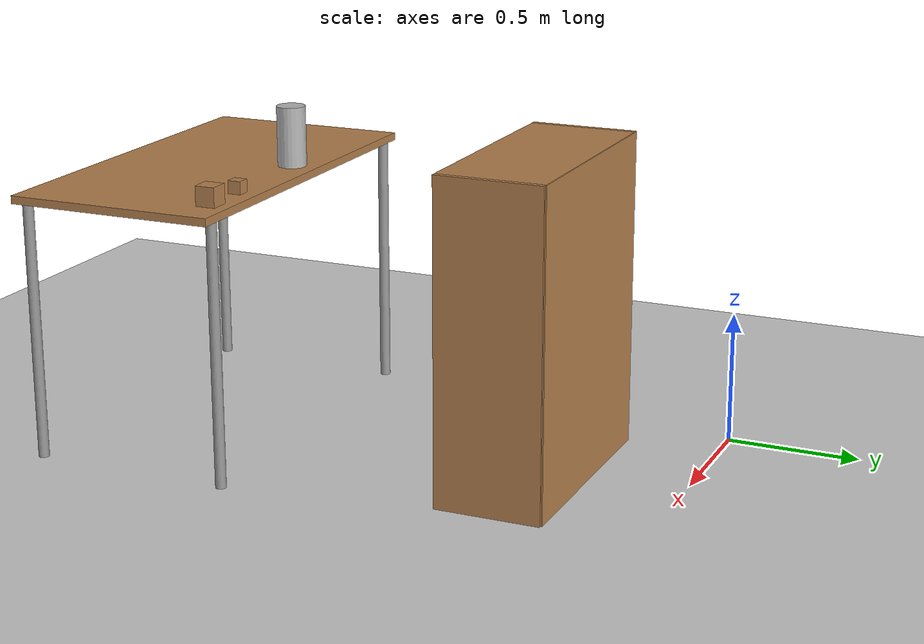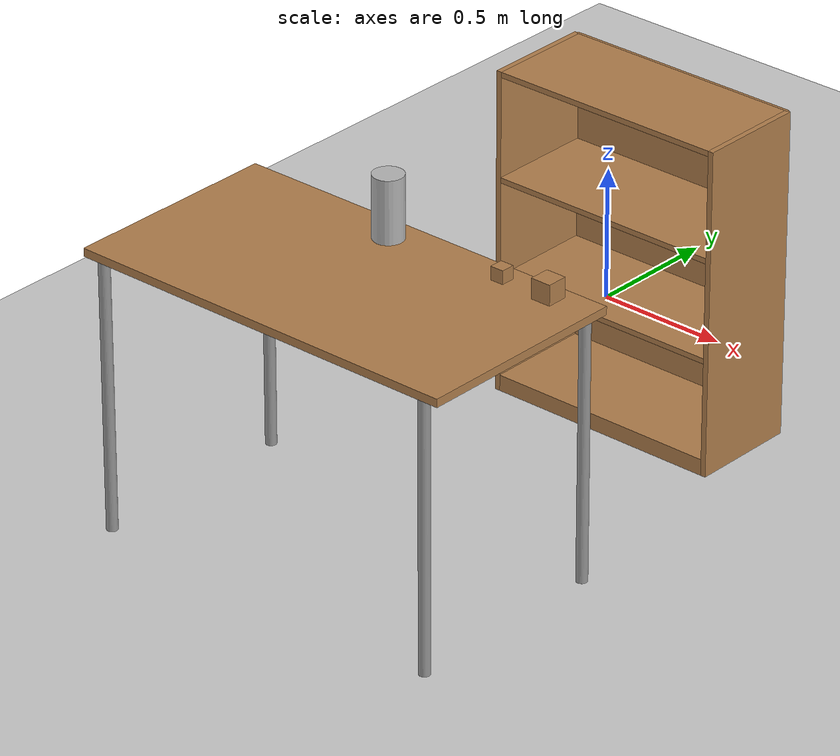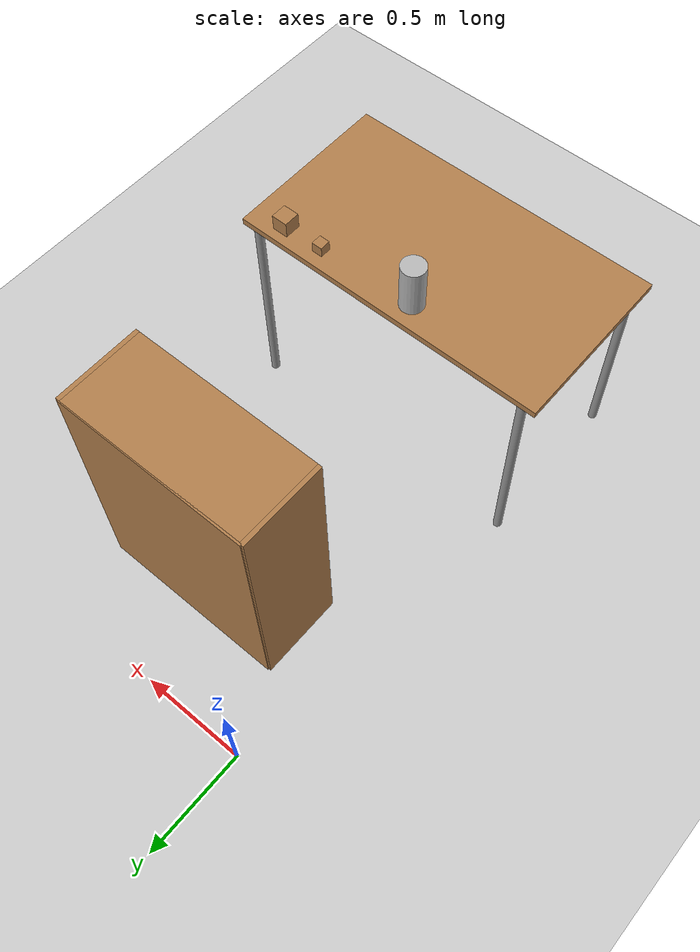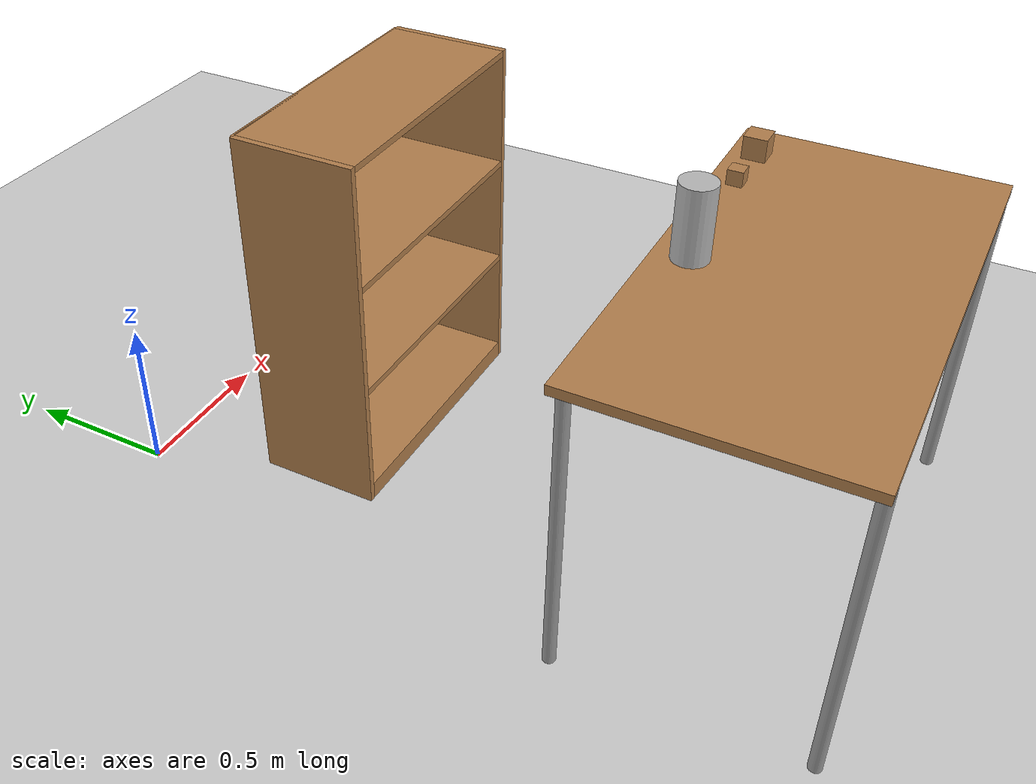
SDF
<sdf version="1.7">
 <world name="default">
  <light name="sun" type="directional">
   <pose>0 0 10 0 -0 0</pose>
   <diffuse>0.8 0.8 0.8 1</diffuse>
   <specular>0.2 0.2 0.2 1</specular>
   <attenuation>
    <range>1000</range>
    <constant>0.9</constant>
    <linear>0.01</linear>
    <quadratic>0.001</quadratic>
   </attenuation>
   <direction>-0.5 0.1 -0.9</direction>
   <spot><inner_angle>0</inner_angle><outer_angle>0</outer_angle><falloff>0</falloff></spot>
  </light>
  <model name="ground_plane">
   <static>1</static>
   <link name="link">
    <collision name="collision">
     <geometry><plane><normal>0 0 1</normal><size>100 100</size></plane></geometry>
     <surface>
      <contact><collide_bitmask>65535</collide_bitmask></contact>
      <friction><ode><mu>100</mu><mu2>50</mu2></ode></friction>
     </surface>
    </collision>
    <visual name="visual">
     <cast_shadows>0</cast_shadows>
     <geometry><plane><normal>0 0 1</normal><size>100 100</size></plane></geometry>
     <material>
      <script><uri>file://media/materials/scripts/gazebo.material</uri><name>Gazebo/Grey</name></script>
     </material>
    </visual>
   </link>
  </model>
  <gravity>0 0 -9.8</gravity>
  <magnetic_field>6e-06 2.3e-05 -4.2e-05</magnetic_field>
  <atmosphere type="adiabatic"/>
  <physics type="ode">
   <max_step_size>0.001</max_step_size>
   <real_time_factor>1</real_time_factor>
   <real_time_update_rate>1000</real_time_update_rate>
  </physics>
  <scene><ambient>0.4 0.4 0.4 1</ambient><background>0.7 0.7 0.7 1</background><shadows>1</shadows></scene>
  <spherical_coordinates>
   <surface_model>EARTH_WGS84</surface_model>
   <latitude_deg>0</latitude_deg>
   <longitude_deg>0</longitude_deg>
   <elevation>0</elevation>
   <heading_deg>0</heading_deg>
  </spherical_coordinates>
  <model name="table">
   <static>1</static>
   <link name="link">
    <collision name="surface">
     <pose>0 0 1 0 -0 0</pose>
     <geometry><box><size>1.5 0.8 0.03</size></box></geometry>
     <surface><friction><ode><mu>0.6</mu><mu2>0.6</mu2></ode></friction></surface>
    </collision>
    <visual name="visual1">
     <pose>0 0 1 0 -0 0</pose>
     <geometry><box><size>1.5 0.8 0.03</size></box></geometry>
     <material>
      <script><uri>file://media/materials/scripts/gazebo.material</uri><name>Gazebo/Wood</name></script>
     </material>
    </visual>
    <collision name="front_left_leg">
     <pose>0.68 0.38 0.5 0 -0 0</pose>
     <geometry><cylinder><radius>0.02</radius><length>1</length></cylinder></geometry>
    </collision>
    <visual name="front_left_leg">
     <pose>0.68 0.38 0.5 0 -0 0</pose>
     <geometry><cylinder><radius>0.02</radius><length>1</length></cylinder></geometry>
     <material>
      <script><uri>file://media/materials/scripts/gazebo.material</uri><name>Gazebo/Grey</name></script>
     </material>
    </visual>
    <collision name="front_right_leg">
     <pose>0.68 -0.38 0.5 0 -0 0</pose>
     <geometry><cylinder><radius>0.02</radius><length>1</length></cylinder></geometry>
    </collision>
    <visual name="front_right_leg">
     <pose>0.68 -0.38 0.5 0 -0 0</pose>
     <geometry><cylinder><radius>0.02</radius><length>1</length></cylinder></geometry>
     <material>
      <script><uri>file://media/materials/scripts/gazebo.material</uri><name>Gazebo/Grey</name></script>
     </material>
    </visual>
    <collision name="back_right_leg">
     <pose>-0.68 -0.38 0.5 0 -0 0</pose>
     <geometry><cylinder><radius>0.02</radius><length>1</length></cylinder></geometry>
    </collision>
    <visual name="back_right_leg">
     <pose>-0.68 -0.38 0.5 0 -0 0</pose>
     <geometry><cylinder><radius>0.02</radius><length>1</length></cylinder></geometry>
     <material>
      <script><uri>file://media/materials/scripts/gazebo.material</uri><name>Gazebo/Grey</name></script>
     </material>
    </visual>
    <collision name="back_left_leg">
     <pose>-0.68 0.38 0.5 0 -0 0</pose>
     <geometry><cylinder><radius>0.02</radius><length>1</length></cylinder></geometry>
    </collision>
    <visual name="back_left_leg">
     <pose>-0.68 0.38 0.5 0 -0 0</pose>
     <geometry><cylinder><radius>0.02</radius><length>1</length></cylinder></geometry>
     <material>
      <script><uri>file://media/materials/scripts/gazebo.material</uri><name>Gazebo/Grey</name></script>
     </material>
    </visual>
   </link>
   <pose>0.508631 -1.91768 0 0 -0 0</pose>
  </model>
  <model name="beer">
   <link name="link">
    <pose>0 0 0.115 0 -0 0</pose>
    <inertial>
     <mass>0.39</mass>
     <inertia><ixx>0.00058</ixx><ixy>0</ixy><ixz>0</ixz><iyy>0.00058</iyy><iyz>0</iyz><izz>0.00019</izz></inertia>
    </inertial>
    <collision name="collision">
     <geometry><cylinder><radius>0.055</radius><length>0.23</length></cylinder></geometry>
    </collision>
    <visual name="visual">
     <geometry><cylinder><radius>0.055</radius><length>0.23</length></cylinder></geometry>
     <material>
      <script>
       <uri>model://beer/materials/scripts</uri>
       <uri>model://beer/materials/textures</uri>
       <name>Beer/Diffuse</name>
      </script>
     </material>
    </visual>
   </link>
   <pose>0.438351 -1.62334 1.015 8e-06 2.1e-05 0.002711</pose>
  </model>
  <model name="wood_cube_5cm">
   <link name="link">
    <pose>0 0 0.025 0 -0 0</pose>
    <inertial>
     <mass>0.0565</mass>
     <inertia>
      <ixx>2.35417e-05</ixx>
      <ixy>0</ixy>
      <ixz>0</ixz>
      <iyy>2.35417e-05</iyy>
      <iyz>0</iyz>
      <izz>2.35417e-05</izz>
     </inertia>
    </inertial>
    <collision name="collision">
     <geometry><box><size>0.05 0.05 0.05</size></box></geometry>
     <surface>
      <contact>
       <poissons_ratio>0.347</poissons_ratio>
       <elastic_modulus>8.8e+09</elastic_modulus>
       <ode><kp>100000</kp><kd>1</kd><max_vel>1</max_vel><min_depth>0.001</min_depth></ode>
      </contact>
      <friction>
       <torsional>
        <coefficient>1</coefficient>
        <use_patch_radius>0</use_patch_radius>
        <surface_radius>0.05</surface_radius>
       </torsional>
      </friction>
     </surface>
    </collision>
    <visual name="visual">
     <geometry><box><size>0.05 0.05 0.05</size></box></geometry>
     <material>
      <script><uri>file://media/materials/scripts/gazebo.material</uri><name>Gazebo/Wood</name></script>
     </material>
    </visual>
   </link>
   <pose>0.895923 -1.59901 1.014 0 -0 0</pose>
  </model>
  <model name="wood_cube_7_5cm">
   <link name="link">
    <pose>0 0 0.0375 0 -0 0</pose>
    <inertial>
     <mass>0.2249</mass>
     <inertia>
      <ixx>0.000210844</ixx>
      <ixy>0</ixy>
      <ixz>0</ixz>
      <iyy>0.000210844</iyy>
      <iyz>0</iyz>
      <izz>0.000210844</izz>
     </inertia>
    </inertial>
    <collision name="collision">
     <geometry><box><size>0.075 0.075 0.075</size></box></geometry>
     <surface>
      <contact>
       <poissons_ratio>0.347</poissons_ratio>
       <elastic_modulus>8.8e+09</elastic_modulus>
       <ode><kp>100000</kp><kd>100</kd><max_vel>100</max_vel><min_depth>0.001</min_depth></ode>
      </contact>
      <friction>
       <torsional>
        <coefficient>1</coefficient>
        <use_patch_radius>0</use_patch_radius>
        <surface_radius>0.01</surface_radius>
       </torsional>
      </friction>
     </surface>
    </collision>
    <visual name="visual">
     <geometry><box><size>0.075 0.075 0.075</size></box></geometry>
     <material>
      <script><uri>file://media/materials/scripts/gazebo.material</uri><name>Gazebo/Wood</name></script>
     </material>
    </visual>
   </link>
   <pose>1.08742 -1.59871 1.01399 0 -0 0</pose>
  </model>
  <model name="bookshelf">
   <static>1</static>
   <link name="link">
    <inertial><mass>1</mass></inertial>
    <collision name="back">
     <pose>0 0.005 0.6 0 -0 0</pose>
     <geometry><box><size>0.9 0.01 1.2</size></box></geometry>
    </collision>
    <visual name="visual1">
     <pose>0 0.005 0.6 0 -0 0</pose>
     <geometry><box><size>0.9 0.01 1.2</size></box></geometry>
     <material>
      <script><uri>file://media/materials/scripts/gazebo.material</uri><name>Gazebo/Wood</name></script>
     </material>
    </visual>
    <collision name="left_side">
     <pose>0.45 -0.195 0.6 0 -0 0</pose>
     <geometry><box><size>0.02 0.4 1.2</size></box></geometry>
    </collision>
    <visual name="visual2">
     <pose>0.45 -0.195 0.6 0 -0 0</pose>
     <geometry><box><size>0.02 0.4 1.2</size></box></geometry>
     <material>
      <script><uri>file://media/materials/scripts/gazebo.material</uri><name>Gazebo/Wood</name></script>
     </material>
    </visual>
    <collision name="right_side">
     <pose>-0.45 -0.195 0.6 0 -0 0</pose>
     <geometry><box><size>0.02 0.4 1.2</size></box></geometry>
    </collision>
    <visual name="visual3">
     <pose>-0.45 -0.195 0.6 0 -0 0</pose>
     <geometry><box><size>0.02 0.4 1.2</size></box></geometry>
     <material>
      <script><uri>file://media/materials/scripts/gazebo.material</uri><name>Gazebo/Wood</name></script>
     </material>
    </visual>
    <collision name="bottom">
     <pose>0 -0.195 0.03 0 -0 0</pose>
     <geometry><box><size>0.88 0.4 0.06</size></box></geometry>
    </collision>
    <visual name="visual4">
     <pose>0 -0.195 0.03 0 -0 0</pose>
     <geometry><box><size>0.88 0.4 0.06</size></box></geometry>
     <material>
      <script><uri>file://media/materials/scripts/gazebo.material</uri><name>Gazebo/Wood</name></script>
     </material>
    </visual>
    <collision name="top">
     <pose>0 -0.195 1.19 0 -0 0</pose>
     <geometry><box><size>0.88 0.4 0.02</size></box></geometry>
    </collision>
    <visual name="visual5">
     <pose>0 -0.195 1.19 0 -0 0</pose>
     <geometry><box><size>0.88 0.4 0.02</size></box></geometry>
     <material>
      <script><uri>file://media/materials/scripts/gazebo.material</uri><name>Gazebo/Wood</name></script>
     </material>
    </visual>
    <collision name="low_shelf">
     <pose>0 -0.195 0.43 0 -0 0</pose>
     <geometry><box><size>0.88 0.4 0.02</size></box></geometry>
    </collision>
    <visual name="visual6">
     <pose>0 -0.195 0.43 0 -0 0</pose>
     <geometry><box><size>0.88 0.4 0.02</size></box></geometry>
     <material>
      <script><uri>file://media/materials/scripts/gazebo.material</uri><name>Gazebo/Wood</name></script>
     </material>
    </visual>
    <collision name="high_shelf">
     <pose>0 -0.195 0.8 0 -0 0</pose>
     <geometry><box><size>0.88 0.4 0.02</size></box></geometry>
    </collision>
    <visual name="visual7">
     <pose>0 -0.195 0.8 0 -0 0</pose>
     <geometry><box><size>0.88 0.4 0.02</size></box></geometry>
     <material>
      <script><uri>file://media/materials/scripts/gazebo.material</uri><name>Gazebo/Wood</name></script>
     </material>
    </visual>
   </link>
   <pose>0.602736 -0.362414 0 0 -0 0</pose>
  </model>
 </world>
</sdf>
